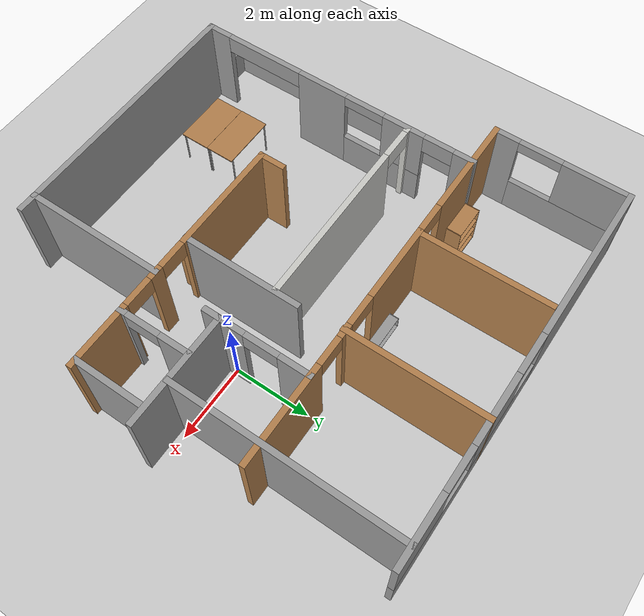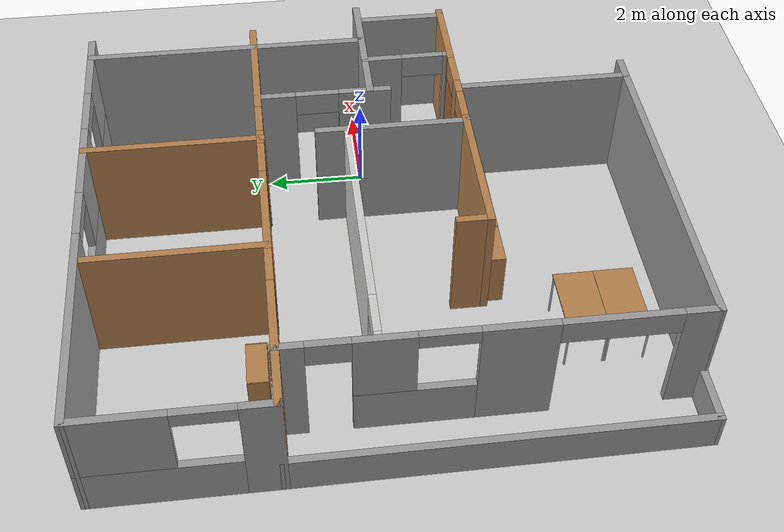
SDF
<sdf version="1.7">
 <world name="default">
  <model name="ground_plane">
   <static>1</static>
   <link name="link">
    <collision name="collision">
     <geometry><plane><normal>0 0 1</normal><size>100 100</size></plane></geometry>
     <surface><friction><ode><mu>100</mu><mu2>50</mu2></ode></friction></surface>
    </collision>
    <visual name="visual">
     <cast_shadows>0</cast_shadows>
     <geometry><plane><normal>0 0 1</normal><size>100 100</size></plane></geometry>
     <material>
      <script><uri>file://media/materials/scripts/gazebo.material</uri><name>Gazebo/Grey</name></script>
     </material>
    </visual>
   </link>
  </model>
  <model name="psr_apartment">
   <pose>-2.46745 -0.010353 0 0 -0 0</pose>
   <link name="Wall_11">
    <pose>-0.304378 5.68028 0 0 -0 0</pose>
    <visual name="Wall_11_Visual_0">
     <pose>-2.95563 0 1.25 0 -0 0</pose>
     <geometry><box><size>4.33874 0.15 2.5</size></box></geometry>
     <material>
      <script><uri>file://media/materials/scripts/gazebo.material</uri><name>Gazebo/Grey</name></script>
      <ambient>1 1 1 1</ambient>
     </material>
     <meta><layer>0</layer></meta>
    </visual>
    <collision name="Wall_11_Collision_0">
     <geometry><box><size>4.33874 0.15 2.5</size></box></geometry>
     <pose>-2.95563 0 1.25 0 -0 0</pose>
    </collision>
    <visual name="Wall_11_Visual_1">
     <pose>2.16937 0 0.5 0 -0 0</pose>
     <geometry><box><size>5.91126 0.15 1</size></box></geometry>
     <material>
      <script><uri>file://media/materials/scripts/gazebo.material</uri><name>Gazebo/Grey</name></script>
      <ambient>1 1 1 1</ambient>
     </material>
     <meta><layer>0</layer></meta>
    </visual>
    <collision name="Wall_11_Collision_1">
     <geometry><box><size>5.91126 0.15 1</size></box></geometry>
     <pose>2.16937 0 0.5 0 -0 0</pose>
    </collision>
    <visual name="Wall_11_Visual_2">
     <pose>1.24874 0 1.75 0 -0 0</pose>
     <geometry><box><size>1.87 0.15 1.5</size></box></geometry>
     <material>
      <script><uri>file://media/materials/scripts/gazebo.material</uri><name>Gazebo/Grey</name></script>
      <ambient>1 1 1 1</ambient>
     </material>
     <meta><layer>0</layer></meta>
    </visual>
    <collision name="Wall_11_Collision_2">
     <geometry><box><size>1.87 0.15 1.5</size></box></geometry>
     <pose>1.24874 0 1.75 0 -0 0</pose>
    </collision>
    <visual name="Wall_11_Visual_3">
     <pose>4.21937 0 1.75 0 -0 0</pose>
     <geometry><box><size>1.81126 0.15 1.5</size></box></geometry>
     <material>
      <script><uri>file://media/materials/scripts/gazebo.material</uri><name>Gazebo/Grey</name></script>
      <ambient>1 1 1 1</ambient>
     </material>
     <meta><layer>0</layer></meta>
    </visual>
    <collision name="Wall_11_Collision_3">
     <geometry><box><size>1.81126 0.15 1.5</size></box></geometry>
     <pose>4.21937 0 1.75 0 -0 0</pose>
    </collision>
    <visual name="Wall_11_Visual_4">
     <pose>-0.236258 0 2.35 0 -0 0</pose>
     <geometry><box><size>1.1 0.15 0.3</size></box></geometry>
     <material>
      <script><uri>file://media/materials/scripts/gazebo.material</uri><name>Gazebo/Grey</name></script>
      <ambient>1 1 1 1</ambient>
     </material>
     <meta><layer>0</layer></meta>
    </visual>
    <collision name="Wall_11_Collision_4">
     <geometry><box><size>1.1 0.15 0.3</size></box></geometry>
     <pose>-0.236258 0 2.35 0 -0 0</pose>
    </collision>
    <visual name="Wall_11_Visual_5">
     <pose>2.74874 0 2.35 0 -0 0</pose>
     <geometry><box><size>1.13 0.15 0.3</size></box></geometry>
     <material>
      <script><uri>file://media/materials/scripts/gazebo.material</uri><name>Gazebo/Grey</name></script>
      <ambient>1 1 1 1</ambient>
     </material>
     <meta><layer>0</layer></meta>
    </visual>
    <collision name="Wall_11_Collision_5">
     <geometry><box><size>1.13 0.15 0.3</size></box></geometry>
     <pose>2.74874 0 2.35 0 -0 0</pose>
    </collision>
   </link>
   <link name="Wall_13">
    <pose>-5.34997 3.91932 0 0 -0 1.5733</pose>
    <visual name="Wall_13_Visual_0">
     <pose>-1.47102 0 1.25 0 -0 0</pose>
     <geometry><box><size>0.73014 0.15 2.5</size></box></geometry>
     <material>
      <script><uri>file://media/materials/scripts/gazebo.material</uri><name>Gazebo/Grey</name></script>
      <ambient>1 1 1 1</ambient>
     </material>
     <meta><layer>0</layer></meta>
    </visual>
    <collision name="Wall_13_Collision_0">
     <geometry><box><size>0.73014 0.15 2.5</size></box></geometry>
     <pose>-1.47102 0 1.25 0 -0 0</pose>
    </collision>
    <visual name="Wall_13_Visual_1">
     <pose>0.36507 0 0.5 0 -0 0</pose>
     <geometry><box><size>2.94204 0.15 1</size></box></geometry>
     <material>
      <script><uri>file://media/materials/scripts/gazebo.material</uri><name>Gazebo/Grey</name></script>
      <ambient>1 1 1 1</ambient>
     </material>
     <meta><layer>0</layer></meta>
    </visual>
    <collision name="Wall_13_Collision_1">
     <geometry><box><size>2.94204 0.15 1</size></box></geometry>
     <pose>0.36507 0 0.5 0 -0 0</pose>
    </collision>
    <visual name="Wall_13_Visual_2">
     <pose>0.93507 0 1.75 0 -0 0</pose>
     <geometry><box><size>1.80204 0.15 1.5</size></box></geometry>
     <material>
      <script><uri>file://media/materials/scripts/gazebo.material</uri><name>Gazebo/Grey</name></script>
      <ambient>1 1 1 1</ambient>
     </material>
     <meta><layer>0</layer></meta>
    </visual>
    <collision name="Wall_13_Collision_2">
     <geometry><box><size>1.80204 0.15 1.5</size></box></geometry>
     <pose>0.93507 0 1.75 0 -0 0</pose>
    </collision>
    <visual name="Wall_13_Visual_3">
     <pose>-0.535949 0 2.35 0 -0 0</pose>
     <geometry><box><size>1.14 0.15 0.3</size></box></geometry>
     <material>
      <script><uri>file://media/materials/scripts/gazebo.material</uri><name>Gazebo/Grey</name></script>
      <ambient>1 1 1 1</ambient>
     </material>
     <meta><layer>0</layer></meta>
    </visual>
    <collision name="Wall_13_Collision_3">
     <geometry><box><size>1.14 0.15 0.3</size></box></geometry>
     <pose>-0.535949 0 2.35 0 -0 0</pose>
    </collision>
   </link>
   <link name="Wall_15">
    <collision name="Wall_15_Collision">
     <geometry><box><size>3.49149 0.15 2.5</size></box></geometry>
     <pose>0 0 1.25 0 -0 0</pose>
    </collision>
    <visual name="Wall_15_Visual">
     <pose>0 0 1.25 0 -0 0</pose>
     <geometry><box><size>3.49149 0.15 2.5</size></box></geometry>
     <material>
      <script><uri>file://media/materials/scripts/gazebo.material</uri><name>Gazebo/Wood</name></script>
      <ambient>1 1 1 1</ambient>
     </material>
     <meta><layer>0</layer></meta>
    </visual>
    <pose>-1.77272 3.85299 0 0 -0 1.57535</pose>
   </link>
   <link name="Wall_17">
    <collision name="Wall_17_Collision">
     <geometry><box><size>3.69364 0.15 2.5</size></box></geometry>
     <pose>0 0 1.25 0 -0 0</pose>
    </collision>
    <visual name="Wall_17_Visual">
     <pose>0 0 1.25 0 -0 0</pose>
     <geometry><box><size>3.69364 0.15 2.5</size></box></geometry>
     <material>
      <script><uri>file://media/materials/scripts/gazebo.material</uri><name>Gazebo/Wood</name></script>
      <ambient>1 1 1 1</ambient>
     </material>
     <meta><layer>0</layer></meta>
    </visual>
    <pose>1.2158 3.90846 0 0 -0 1.5708</pose>
   </link>
   <link name="Wall_19">
    <pose>2.49334 0.790666 0 0 -0 -1.5708</pose>
    <visual name="Wall_19_Visual_0">
     <pose>-1.00243 0 1.25 0 -0 0</pose>
     <geometry><box><size>0.867502 0.15 2.5</size></box></geometry>
     <material>
      <script><uri>file://media/materials/scripts/gazebo.material</uri><name>Gazebo/Grey</name></script>
      <ambient>1 1 1 1</ambient>
     </material>
     <meta><layer>0</layer></meta>
    </visual>
    <collision name="Wall_19_Collision_0">
     <geometry><box><size>0.867502 0.15 2.5</size></box></geometry>
     <pose>-1.00243 0 1.25 0 -0 0</pose>
    </collision>
    <visual name="Wall_19_Visual_1">
     <pose>0.883751 0 1.25 0 -0 0</pose>
     <geometry><box><size>1.10486 0.15 2.5</size></box></geometry>
     <material>
      <script><uri>file://media/materials/scripts/gazebo.material</uri><name>Gazebo/Grey</name></script>
      <ambient>1 1 1 1</ambient>
     </material>
     <meta><layer>0</layer></meta>
    </visual>
    <collision name="Wall_19_Collision_1">
     <geometry><box><size>1.10486 0.15 2.5</size></box></geometry>
     <pose>0.883751 0 1.25 0 -0 0</pose>
    </collision>
    <visual name="Wall_19_Visual_2">
     <pose>-0.118681 0 2.25 0 -0 0</pose>
     <geometry><box><size>0.9 0.15 0.5</size></box></geometry>
     <material>
      <script><uri>file://media/materials/scripts/gazebo.material</uri><name>Gazebo/Grey</name></script>
      <ambient>1 1 1 1</ambient>
     </material>
     <meta><layer>0</layer></meta>
    </visual>
    <collision name="Wall_19_Collision_2">
     <geometry><box><size>0.9 0.15 0.5</size></box></geometry>
     <pose>-0.118681 0 2.25 0 -0 0</pose>
    </collision>
   </link>
   <link name="Wall_2">
    <collision name="Wall_2_Collision">
     <geometry><box><size>7.14201 0.15 2.5</size></box></geometry>
     <pose>0 0 1.25 0 -0 0</pose>
    </collision>
    <visual name="Wall_2_Visual">
     <pose>0 0 1.25 0 -0 0</pose>
     <geometry><box><size>7.14201 0.15 2.5</size></box></geometry>
     <material>
      <script><uri>file://media/materials/scripts/gazebo.material</uri><name>Gazebo/Grey</name></script>
      <ambient>1 1 1 1</ambient>
     </material>
     <meta><layer>0</layer></meta>
    </visual>
    <pose>-0.692508 -5.67455 0 0 -0 -0.00169</pose>
   </link>
   <link name="Wall_21">
    <collision name="Wall_21_Collision">
     <geometry><box><size>3 0.15 2.5</size></box></geometry>
     <pose>0 0 1.25 0 -0 0</pose>
    </collision>
    <visual name="Wall_21_Visual">
     <pose>0 0 1.25 0 -0 0</pose>
     <geometry><box><size>3 0.15 2.5</size></box></geometry>
     <material>
      <script><uri>file://media/materials/scripts/gazebo.material</uri><name>Gazebo/Grey</name></script>
      <ambient>1 1 1 1</ambient>
     </material>
     <meta><layer>0</layer></meta>
    </visual>
    <pose>3.92957 -0.207491 0 0 -0 3.14159</pose>
   </link>
   <link name="Wall_24">
    <pose>1.7781 -2.06515 0 0 -0 0</pose>
    <visual name="Wall_24_Visual_0">
     <pose>-1.84862 0 1.25 0 -0 0</pose>
     <geometry><box><size>3.05276 0.15 2.5</size></box></geometry>
     <material>
      <script><uri>file://media/materials/scripts/gazebo.material</uri><name>Gazebo/Wood</name></script>
      <ambient>1 1 1 1</ambient>
     </material>
     <meta><layer>0</layer></meta>
    </visual>
    <collision name="Wall_24_Collision_0">
     <geometry><box><size>3.05276 0.15 2.5</size></box></geometry>
     <pose>-1.84862 0 1.25 0 -0 0</pose>
    </collision>
    <visual name="Wall_24_Visual_1">
     <pose>0.622094 0 1.25 0 -0 0</pose>
     <geometry><box><size>0.377977 0.15 2.5</size></box></geometry>
     <material>
      <script><uri>file://media/materials/scripts/gazebo.material</uri><name>Gazebo/Wood</name></script>
      <ambient>1 1 1 1</ambient>
     </material>
     <meta><layer>0</layer></meta>
    </visual>
    <collision name="Wall_24_Collision_1">
     <geometry><box><size>0.377977 0.15 2.5</size></box></geometry>
     <pose>0.622094 0 1.25 0 -0 0</pose>
    </collision>
    <visual name="Wall_24_Visual_2">
     <pose>2.48387 0 1.25 0 -0 0</pose>
     <geometry><box><size>1.78227 0.15 2.5</size></box></geometry>
     <material>
      <script><uri>file://media/materials/scripts/gazebo.material</uri><name>Gazebo/Wood</name></script>
      <ambient>1 1 1 1</ambient>
     </material>
     <meta><layer>0</layer></meta>
    </visual>
    <collision name="Wall_24_Collision_2">
     <geometry><box><size>1.78227 0.15 2.5</size></box></geometry>
     <pose>2.48387 0 1.25 0 -0 0</pose>
    </collision>
    <visual name="Wall_24_Visual_3">
     <pose>0.055432 0 2.25 0 -0 0</pose>
     <geometry><box><size>0.755346 0.15 0.5</size></box></geometry>
     <material>
      <script><uri>file://media/materials/scripts/gazebo.material</uri><name>Gazebo/Wood</name></script>
      <ambient>1 1 1 1</ambient>
     </material>
     <meta><layer>0</layer></meta>
    </visual>
    <collision name="Wall_24_Collision_3">
     <geometry><box><size>0.755346 0.15 0.5</size></box></geometry>
     <pose>0.055432 0 2.25 0 -0 0</pose>
    </collision>
    <visual name="Wall_24_Visual_4">
     <pose>1.20191 0 2.25 0 -0 0</pose>
     <geometry><box><size>0.781647 0.15 0.5</size></box></geometry>
     <material>
      <script><uri>file://media/materials/scripts/gazebo.material</uri><name>Gazebo/Wood</name></script>
      <ambient>1 1 1 1</ambient>
     </material>
     <meta><layer>0</layer></meta>
    </visual>
    <collision name="Wall_24_Collision_4">
     <geometry><box><size>0.781647 0.15 0.5</size></box></geometry>
     <pose>1.20191 0 2.25 0 -0 0</pose>
    </collision>
   </link>
   <link name="Wall_27">
    <collision name="Wall_27_Collision">
     <geometry><box><size>2 0.15 2.5</size></box></geometry>
     <pose>0 0 1.25 0 -0 0</pose>
    </collision>
    <visual name="Wall_27_Visual">
     <pose>0 0 1.25 0 -0 0</pose>
     <geometry><box><size>2 0.15 2.5</size></box></geometry>
     <material>
      <script><uri>file://media/materials/scripts/gazebo.material</uri><name>Gazebo/Grey</name></script>
      <ambient>1 1 1 1</ambient>
     </material>
     <meta><layer>0</layer></meta>
    </visual>
    <pose>4.94512 -1.14015 0 0 -0 1.5708</pose>
   </link>
   <link name="Wall_29">
    <pose>3.52344 -1.14601 0 0 -0 -1.5636</pose>
    <visual name="Wall_29_Visual_0">
     <pose>-0.566193 0 1.25 0 -0 0</pose>
     <geometry><box><size>0.855937 0.15 2.5</size></box></geometry>
     <material>
      <script><uri>file://media/materials/scripts/gazebo.material</uri><name>Gazebo/Grey</name></script>
      <ambient>1 1 1 1</ambient>
     </material>
     <meta><layer>0</layer></meta>
    </visual>
    <collision name="Wall_29_Collision_0">
     <geometry><box><size>0.855937 0.15 2.5</size></box></geometry>
     <pose>-0.566193 0 1.25 0 -0 0</pose>
    </collision>
    <visual name="Wall_29_Visual_1">
     <pose>0.877969 0 1.25 0 -0 0</pose>
     <geometry><box><size>0.232385 0.15 2.5</size></box></geometry>
     <material>
      <script><uri>file://media/materials/scripts/gazebo.material</uri><name>Gazebo/Grey</name></script>
      <ambient>1 1 1 1</ambient>
     </material>
     <meta><layer>0</layer></meta>
    </visual>
    <collision name="Wall_29_Collision_1">
     <geometry><box><size>0.232385 0.15 2.5</size></box></geometry>
     <pose>0.877969 0 1.25 0 -0 0</pose>
    </collision>
    <visual name="Wall_29_Visual_2">
     <pose>0.311776 0 2.25 0 -0 0</pose>
     <geometry><box><size>0.9 0.15 0.5</size></box></geometry>
     <material>
      <script><uri>file://media/materials/scripts/gazebo.material</uri><name>Gazebo/Grey</name></script>
      <ambient>1 1 1 1</ambient>
     </material>
     <meta><layer>0</layer></meta>
    </visual>
    <collision name="Wall_29_Collision_2">
     <geometry><box><size>0.9 0.15 0.5</size></box></geometry>
     <pose>0.311776 0 2.25 0 -0 0</pose>
    </collision>
   </link>
   <link name="Wall_31">
    <collision name="Wall_31_Collision">
     <geometry><box><size>3.19175 0.15 2.5</size></box></geometry>
     <pose>0 0 1.25 0 -0 0</pose>
    </collision>
    <visual name="Wall_31_Visual">
     <pose>0 0 1.25 0 -0 0</pose>
     <geometry><box><size>3.19175 0.15 2.5</size></box></geometry>
     <material>
      <script><uri>file://media/materials/scripts/gazebo.material</uri><name>Gazebo/Grey</name></script>
      <ambient>1 1 1 1</ambient>
     </material>
     <meta><layer>0</layer></meta>
    </visual>
    <pose>1.30267 -0.550631 0 0 -0 1.5708</pose>
   </link>
   <link name="Wall_34">
    <pose>-1.44379 0.379575 0 0 -0 0</pose>
    <visual name="Wall_34_Visual_0">
     <pose>-2.70164 0 1.25 0 -0 0</pose>
     <geometry><box><size>0.216714 0.15 2.5</size></box></geometry>
     <material>
      <script><uri>file://media/materials/scripts/gazebo.material</uri><name>Gazebo/CeilingTiled</name></script>
      <ambient>1 1 1 1</ambient>
     </material>
     <meta><layer>0</layer></meta>
    </visual>
    <collision name="Wall_34_Collision_0">
     <geometry><box><size>0.216714 0.15 2.5</size></box></geometry>
     <pose>-2.70164 0 1.25 0 -0 0</pose>
    </collision>
    <visual name="Wall_34_Visual_1">
     <pose>0.528187 0 1.25 0 -0 0</pose>
     <geometry><box><size>4.56363 0.15 2.5</size></box></geometry>
     <material>
      <script><uri>file://media/materials/scripts/gazebo.material</uri><name>Gazebo/CeilingTiled</name></script>
      <ambient>1 1 1 1</ambient>
     </material>
     <meta><layer>0</layer></meta>
    </visual>
    <collision name="Wall_34_Collision_1">
     <geometry><box><size>4.56363 0.15 2.5</size></box></geometry>
     <pose>0.528187 0 1.25 0 -0 0</pose>
    </collision>
    <visual name="Wall_34_Visual_2">
     <pose>-2.17346 0 2.25 0 -0 0</pose>
     <geometry><box><size>0.839659 0.15 0.5</size></box></geometry>
     <material>
      <script><uri>file://media/materials/scripts/gazebo.material</uri><name>Gazebo/CeilingTiled</name></script>
      <ambient>1 1 1 1</ambient>
     </material>
     <meta><layer>0</layer></meta>
    </visual>
    <collision name="Wall_34_Collision_2">
     <geometry><box><size>0.839659 0.15 0.5</size></box></geometry>
     <pose>-2.17346 0 2.25 0 -0 0</pose>
    </collision>
   </link>
   <link name="Wall_36">
    <collision name="Wall_36_Collision">
     <geometry><box><size>0.75 0.15 2.5</size></box></geometry>
     <pose>0 0 1.25 0 -0 0</pose>
    </collision>
    <visual name="Wall_36_Visual">
     <pose>0 0 1.25 0 -0 0</pose>
     <geometry><box><size>0.75 0.15 2.5</size></box></geometry>
     <material>
      <script><uri>file://media/materials/scripts/gazebo.material</uri><name>Gazebo/Wood</name></script>
      <ambient>1 1 1 1</ambient>
     </material>
     <meta><layer>0</layer></meta>
    </visual>
    <pose>-1.5219 -1.76515 0 0 -0 1.5708</pose>
   </link>
   <link name="Wall_39">
    <collision name="Wall_39_Collision">
     <geometry><box><size>3.75 0.15 2.5</size></box></geometry>
     <pose>0 0 1.25 0 -0 0</pose>
    </collision>
    <visual name="Wall_39_Visual">
     <pose>0 0 1.25 0 -0 0</pose>
     <geometry><box><size>3.75 0.15 2.5</size></box></geometry>
     <material>
      <script><uri>file://media/materials/scripts/gazebo.material</uri><name>Gazebo/Grey</name></script>
      <ambient>1 1 1 1</ambient>
     </material>
     <meta><layer>0</layer></meta>
    </visual>
    <pose>2.37648 -3.8696 0 0 -0 -1.5708</pose>
   </link>
   <link name="Wall_4">
    <pose>-4.18851 -1.7438 0 0 -0 1.57079</pose>
    <visual name="Wall_4_Visual_0">
     <pose>-3.64118 0 1.25 0 -0 0</pose>
     <geometry><box><size>0.717646 0.15 2.5</size></box></geometry>
     <material>
      <script><uri>file://media/materials/scripts/gazebo.material</uri><name>Gazebo/Grey</name></script>
      <ambient>1 1 1 1</ambient>
     </material>
     <meta><layer>0</layer></meta>
    </visual>
    <collision name="Wall_4_Collision_0">
     <geometry><box><size>0.717646 0.15 2.5</size></box></geometry>
     <pose>-3.64118 0 1.25 0 -0 0</pose>
    </collision>
    <visual name="Wall_4_Visual_1">
     <pose>-0.38098 0 1.25 0 -0 0</pose>
     <geometry><box><size>1.41075 0.15 2.5</size></box></geometry>
     <material>
      <script><uri>file://media/materials/scripts/gazebo.material</uri><name>Gazebo/Grey</name></script>
      <ambient>1 1 1 1</ambient>
     </material>
     <meta><layer>0</layer></meta>
    </visual>
    <collision name="Wall_4_Collision_1">
     <geometry><box><size>1.41075 0.15 2.5</size></box></geometry>
     <pose>-0.38098 0 1.25 0 -0 0</pose>
    </collision>
    <visual name="Wall_4_Visual_2">
     <pose>3.70228 0 1.25 0 -0 0</pose>
     <geometry><box><size>0.59543 0.15 2.5</size></box></geometry>
     <material>
      <script><uri>file://media/materials/scripts/gazebo.material</uri><name>Gazebo/Grey</name></script>
      <ambient>1 1 1 1</ambient>
     </material>
     <meta><layer>0</layer></meta>
    </visual>
    <collision name="Wall_4_Collision_2">
     <geometry><box><size>0.59543 0.15 2.5</size></box></geometry>
     <pose>3.70228 0 1.25 0 -0 0</pose>
    </collision>
    <visual name="Wall_4_Visual_3">
     <pose>1.45361 0 0.5 0 -0 0</pose>
     <geometry><box><size>2.25844 0.15 1</size></box></geometry>
     <material>
      <script><uri>file://media/materials/scripts/gazebo.material</uri><name>Gazebo/Grey</name></script>
      <ambient>1 1 1 1</ambient>
     </material>
     <meta><layer>0</layer></meta>
    </visual>
    <collision name="Wall_4_Collision_3">
     <geometry><box><size>2.25844 0.15 1</size></box></geometry>
     <pose>1.45361 0 0.5 0 -0 0</pose>
    </collision>
    <visual name="Wall_4_Visual_4">
     <pose>2.00561 0 1.75 0 -0 0</pose>
     <geometry><box><size>1.15444 0.15 1.5</size></box></geometry>
     <material>
      <script><uri>file://media/materials/scripts/gazebo.material</uri><name>Gazebo/Grey</name></script>
      <ambient>1 1 1 1</ambient>
     </material>
     <meta><layer>0</layer></meta>
    </visual>
    <collision name="Wall_4_Collision_4">
     <geometry><box><size>1.15444 0.15 1.5</size></box></geometry>
     <pose>2.00561 0 1.75 0 -0 0</pose>
    </collision>
    <visual name="Wall_4_Visual_5">
     <pose>-2.18435 0 2.25 0 -0 0</pose>
     <geometry><box><size>2.196 0.15 0.5</size></box></geometry>
     <material>
      <script><uri>file://media/materials/scripts/gazebo.material</uri><name>Gazebo/Grey</name></script>
      <ambient>1 1 1 1</ambient>
     </material>
     <meta><layer>0</layer></meta>
    </visual>
    <collision name="Wall_4_Collision_5">
     <geometry><box><size>2.196 0.15 0.5</size></box></geometry>
     <pose>-2.18435 0 2.25 0 -0 0</pose>
    </collision>
    <visual name="Wall_4_Visual_6">
     <pose>2.9937 0 2.25 0 -0 0</pose>
     <geometry><box><size>0.821739 0.15 0.5</size></box></geometry>
     <material>
      <script><uri>file://media/materials/scripts/gazebo.material</uri><name>Gazebo/Grey</name></script>
      <ambient>1 1 1 1</ambient>
     </material>
     <meta><layer>0</layer></meta>
    </visual>
    <collision name="Wall_4_Collision_6">
     <geometry><box><size>0.821739 0.15 0.5</size></box></geometry>
     <pose>2.9937 0 2.25 0 -0 0</pose>
    </collision>
    <visual name="Wall_4_Visual_7">
     <pose>0.876393 0 2.35 0 -0 0</pose>
     <geometry><box><size>1.104 0.15 0.3</size></box></geometry>
     <material>
      <script><uri>file://media/materials/scripts/gazebo.material</uri><name>Gazebo/Grey</name></script>
      <ambient>1 1 1 1</ambient>
     </material>
     <meta><layer>0</layer></meta>
    </visual>
    <collision name="Wall_4_Collision_7">
     <geometry><box><size>1.104 0.15 0.3</size></box></geometry>
     <pose>0.876393 0 2.35 0 -0 0</pose>
    </collision>
   </link>
   <link name="Wall_41">
    <collision name="Wall_41_Collision">
     <geometry><box><size>1.25 0.15 0.8</size></box></geometry>
     <pose>0 0 0.4 0 -0 0</pose>
    </collision>
    <visual name="Wall_41_Visual">
     <pose>0 0 0.4 0 -0 0</pose>
     <geometry><box><size>1.25 0.15 0.8</size></box></geometry>
     <material>
      <script><uri>file://media/materials/scripts/gazebo.material</uri><name>Gazebo/Grey</name></script>
      <ambient>0.368627 0.384314 0.352941 1</ambient>
     </material>
     <meta><layer>0</layer></meta>
    </visual>
    <pose>-4.73855 -5.66865 0 0 -0 3.14159</pose>
   </link>
   <link name="Wall_42">
    <collision name="Wall_42_Collision">
     <geometry><box><size>7.97728 0.15 0.8</size></box></geometry>
     <pose>0 0 0.4 0 -0 0</pose>
    </collision>
    <visual name="Wall_42_Visual">
     <pose>0 0 0.4 0 -0 0</pose>
     <geometry><box><size>7.97728 0.15 0.8</size></box></geometry>
     <material>
      <script><uri>file://media/materials/scripts/gazebo.material</uri><name>Gazebo/Grey</name></script>
      <ambient>0.368627 0.384314 0.352941 1</ambient>
     </material>
     <meta><layer>0</layer></meta>
    </visual>
    <pose>-5.31705 -1.75515 0 0 -0 1.57808</pose>
   </link>
   <link name="Wall_6">
    <pose>-0.295353 2.15823 0 0 -0 -2.4e-05</pose>
    <visual name="Wall_6_Visual_0">
     <pose>-3.73944 0 1.25 0 -0 0</pose>
     <geometry><box><size>2.77111 0.15 2.5</size></box></geometry>
     <material>
      <script><uri>file://media/materials/scripts/gazebo.material</uri><name>Gazebo/Wood</name></script>
      <ambient>1 1 1 1</ambient>
     </material>
     <meta><layer>0</layer></meta>
    </visual>
    <collision name="Wall_6_Collision_0">
     <geometry><box><size>2.77111 0.15 2.5</size></box></geometry>
     <pose>-3.73944 0 1.25 0 -0 0</pose>
    </collision>
    <visual name="Wall_6_Visual_1">
     <pose>-0.52611 0 1.25 0 -0 0</pose>
     <geometry><box><size>2.09692 0.15 2.5</size></box></geometry>
     <material>
      <script><uri>file://media/materials/scripts/gazebo.material</uri><name>Gazebo/Wood</name></script>
      <ambient>1 1 1 1</ambient>
     </material>
     <meta><layer>0</layer></meta>
    </visual>
    <collision name="Wall_6_Collision_1">
     <geometry><box><size>2.09692 0.15 2.5</size></box></geometry>
     <pose>-0.52611 0 1.25 0 -0 0</pose>
    </collision>
    <visual name="Wall_6_Visual_2">
     <pose>1.53051 0 1.25 0 -0 0</pose>
     <geometry><box><size>0.377215 0.15 2.5</size></box></geometry>
     <material>
      <script><uri>file://media/materials/scripts/gazebo.material</uri><name>Gazebo/Wood</name></script>
      <ambient>1 1 1 1</ambient>
     </material>
     <meta><layer>0</layer></meta>
    </visual>
    <collision name="Wall_6_Collision_2">
     <geometry><box><size>0.377215 0.15 2.5</size></box></geometry>
     <pose>1.53051 0 1.25 0 -0 0</pose>
    </collision>
    <visual name="Wall_6_Visual_3">
     <pose>3.80166 0 1.25 0 -0 0</pose>
     <geometry><box><size>2.64668 0.15 2.5</size></box></geometry>
     <material>
      <script><uri>file://media/materials/scripts/gazebo.material</uri><name>Gazebo/Wood</name></script>
      <ambient>1 1 1 1</ambient>
     </material>
     <meta><layer>0</layer></meta>
    </visual>
    <collision name="Wall_6_Collision_3">
     <geometry><box><size>2.64668 0.15 2.5</size></box></geometry>
     <pose>3.80166 0 1.25 0 -0 0</pose>
    </collision>
    <visual name="Wall_6_Visual_4">
     <pose>-1.96423 0 2.25 0 -0 0</pose>
     <geometry><box><size>0.779319 0.15 0.5</size></box></geometry>
     <material>
      <script><uri>file://media/materials/scripts/gazebo.material</uri><name>Gazebo/Wood</name></script>
      <ambient>1 1 1 1</ambient>
     </material>
     <meta><layer>0</layer></meta>
    </visual>
    <collision name="Wall_6_Collision_4">
     <geometry><box><size>0.779319 0.15 0.5</size></box></geometry>
     <pose>-1.96423 0 2.25 0 -0 0</pose>
    </collision>
    <visual name="Wall_6_Visual_5">
     <pose>0.932124 0 2.25 0 -0 0</pose>
     <geometry><box><size>0.819546 0.15 0.5</size></box></geometry>
     <material>
      <script><uri>file://media/materials/scripts/gazebo.material</uri><name>Gazebo/Wood</name></script>
      <ambient>1 1 1 1</ambient>
     </material>
     <meta><layer>0</layer></meta>
    </visual>
    <collision name="Wall_6_Collision_5">
     <geometry><box><size>0.819546 0.15 0.5</size></box></geometry>
     <pose>0.932124 0 2.25 0 -0 0</pose>
    </collision>
    <visual name="Wall_6_Visual_6">
     <pose>2.09872 0 2.25 0 -0 0</pose>
     <geometry><box><size>0.759206 0.15 0.5</size></box></geometry>
     <material>
      <script><uri>file://media/materials/scripts/gazebo.material</uri><name>Gazebo/Wood</name></script>
      <ambient>1 1 1 1</ambient>
     </material>
     <meta><layer>0</layer></meta>
    </visual>
    <collision name="Wall_6_Collision_6">
     <geometry><box><size>0.759206 0.15 0.5</size></box></geometry>
     <pose>2.09872 0 2.25 0 -0 0</pose>
    </collision>
   </link>
   <link name="Wall_9">
    <collision name="Wall_9_Collision">
     <geometry><box><size>6 0.15 2.5</size></box></geometry>
     <pose>0 0 1.25 0 -0 0</pose>
    </collision>
    <visual name="Wall_9_Visual">
     <pose>0 0 1.25 0 -0 0</pose>
     <geometry><box><size>6 0.15 2.5</size></box></geometry>
     <material>
      <script><uri>file://media/materials/scripts/gazebo.material</uri><name>Gazebo/Grey</name></script>
      <ambient>1 1 1 1</ambient>
     </material>
     <meta><layer>0</layer></meta>
    </visual>
    <pose>4.22713 2.74007 0 0 -0 -1.5708</pose>
   </link>
   <static>1</static>
  </model>
  <model name="Wall_Cabinet_36x15W">
   <link name="Wall_0">
    <pose>0 0 0.01 0 -0 0</pose>
    <inertial>
     <mass>1.9796</mass>
     <inertia><ixx>0.0145</ixx><iyy>0.1511</iyy><izz>0.1367</izz><ixy>0</ixy><ixz>0</ixz><iyz>0</iyz></inertia>
    </inertial>
    <collision name="Wall_0_Collision"><geometry><box><size>0.91 0.296 0.02</size></box></geometry></collision>
    <visual name="Wall_0_Visual">
     <geometry><box><size>0.91 0.296 0.02</size></box></geometry>
     <material>
      <script><uri>file://media/materials/scripts/gazebo.material</uri><name>Gazebo/Grey</name></script>
      <ambient>1 1 1 1</ambient>
     </material>
    </visual>
   </link>
   <joint name="0_2" type="fixed">
    <pose>-0.455 0 0 0 -0 0</pose>
    <parent>Wall_2</parent>
    <child>Wall_0</child>
    <axis><xyz>0 0 1</xyz><limit><lower>-1e+16</lower><upper>1e+16</upper></limit></axis>
   </joint>
   <joint name="0_4" type="fixed">
    <pose>0.455 0 0 0 -0 0</pose>
    <parent>Wall_4</parent>
    <child>Wall_0</child>
    <axis><xyz>0 0 1</xyz><limit><lower>-1e+16</lower><upper>1e+16</upper></limit></axis>
   </joint>
   <joint name="0_8" type="fixed">
    <pose>0 -0.148 0 0 -0 0</pose>
    <parent>Wall_8</parent>
    <child>Wall_0</child>
    <axis><xyz>0 0 1</xyz><limit><lower>-1e+16</lower><upper>1e+16</upper></limit></axis>
   </joint>
   <link name="Wall_2">
    <pose>-0.445 0 0.192 0 -0 0</pose>
    <inertial>
     <mass>0.8353</mass>
     <inertia><ixx>0.0061</ixx><iyy>0.0164</iyy><izz>0.0103</izz><ixy>0</ixy><ixz>0</ixz><iyz>0</iyz></inertia>
    </inertial>
    <collision name="Wall_2_Collision"><geometry><box><size>0.02 0.296 0.384</size></box></geometry></collision>
    <visual name="Wall_2_Visual">
     <geometry><box><size>0.02 0.296 0.384</size></box></geometry>
     <material>
      <script><uri>file://media/materials/scripts/gazebo.material</uri><name>Gazebo/Grey</name></script>
      <ambient>1 1 1 1</ambient>
     </material>
    </visual>
   </link>
   <link name="Wall_4">
    <pose>0.445 0 0.192 0 -0 0</pose>
    <inertial>
     <mass>0.8353</mass>
     <inertia><ixx>0.0061</ixx><iyy>0.0164</iyy><izz>0.0103</izz><ixy>0</ixy><ixz>0</ixz><iyz>0</iyz></inertia>
    </inertial>
    <collision name="Wall_4_Collision"><geometry><box><size>0.02 0.296 0.384</size></box></geometry></collision>
    <visual name="Wall_4_Visual">
     <geometry><box><size>0.02 0.296 0.384</size></box></geometry>
     <material>
      <script><uri>file://media/materials/scripts/gazebo.material</uri><name>Gazebo/Grey</name></script>
      <ambient>1 1 1 1</ambient>
     </material>
    </visual>
   </link>
   <link name="Wall_6">
    <pose>0 0 0.374 0 -0 0</pose>
    <inertial>
     <mass>1.9796</mass>
     <inertia><ixx>0.0145</ixx><iyy>0.1511</iyy><izz>0.1367</izz><ixy>0</ixy><ixz>0</ixz><iyz>0</iyz></inertia>
    </inertial>
    <collision name="Wall_6_Collision"><geometry><box><size>0.91 0.296 0.02</size></box></geometry></collision>
    <visual name="Wall_6_Visual">
     <geometry><box><size>0.91 0.296 0.02</size></box></geometry>
     <material>
      <script><uri>file://media/materials/scripts/gazebo.material</uri><name>Gazebo/Grey</name></script>
      <ambient>1 1 1 1</ambient>
     </material>
    </visual>
   </link>
   <joint name="6_2" type="fixed">
    <pose>-0.455 0 0 0 -0 0</pose>
    <parent>Wall_2</parent>
    <child>Wall_6</child>
    <axis><xyz>0 0 1</xyz><limit><lower>-1e+16</lower><upper>1e+16</upper></limit></axis>
   </joint>
   <joint name="6_4" type="fixed">
    <pose>0.455 0 0 0 -0 0</pose>
    <parent>Wall_4</parent>
    <child>Wall_6</child>
    <axis><xyz>0 0 1</xyz><limit><lower>-1e+16</lower><upper>1e+16</upper></limit></axis>
   </joint>
   <joint name="6_8" type="fixed">
    <pose>0 -0.148 0 0 -0 0</pose>
    <parent>Wall_8</parent>
    <child>Wall_6</child>
    <axis><xyz>0 0 1</xyz><limit><lower>-1e+16</lower><upper>1e+16</upper></limit></axis>
   </joint>
   <link name="Wall_8">
    <pose>0 -0.138 0.19 0 -0 0</pose>
    <inertial>
     <mass>2.5302</mass>
     <inertia><ixx>0.0305</ixx><iyy>0.1732</iyy><izz>0.2035</izz><ixy>0</ixy><ixz>0</ixz><iyz>0</iyz></inertia>
    </inertial>
    <collision name="Wall_8_Collision"><geometry><box><size>0.906 0.02 0.38</size></box></geometry></collision>
    <visual name="Wall_8_Visual">
     <geometry><box><size>0.906 0.02 0.38</size></box></geometry>
     <material>
      <script><uri>file://media/materials/scripts/gazebo.material</uri><name>Gazebo/Grey</name></script>
      <ambient>1 1 1 1</ambient>
     </material>
    </visual>
   </link>
   <joint name="8_2" type="fixed">
    <pose>-0.453 0 0 0 -0 0</pose>
    <parent>Wall_2</parent>
    <child>Wall_8</child>
    <axis><xyz>0 1 0</xyz><limit><lower>-1e+16</lower><upper>1e+16</upper></limit></axis>
   </joint>
   <joint name="8_4" type="fixed">
    <pose>0.453 0 0 0 -0 0</pose>
    <parent>Wall_4</parent>
    <child>Wall_8</child>
    <axis><xyz>0 1 0</xyz><limit><lower>-1e+16</lower><upper>1e+16</upper></limit></axis>
   </joint>
   <static>1</static>
   <pose>-2.68214 2.32688 0 0 -0 0</pose>
  </model>
  <model name="table">
   <static>1</static>
   <link name="link">
    <collision name="surface">
     <pose>0 0 1 0 -0 0</pose>
     <geometry><box><size>1.5 0.8 0.03</size></box></geometry>
     <surface><friction><ode><mu>0.6</mu><mu2>0.6</mu2></ode></friction></surface>
    </collision>
    <visual name="visual1">
     <pose>0 0 1 0 -0 0</pose>
     <geometry><box><size>1.5 0.8 0.03</size></box></geometry>
     <material>
      <script><uri>file://media/materials/scripts/gazebo.material</uri><name>Gazebo/Wood</name></script>
     </material>
    </visual>
    <collision name="front_left_leg">
     <pose>0.68 0.38 0.5 0 -0 0</pose>
     <geometry><cylinder><radius>0.02</radius><length>1</length></cylinder></geometry>
    </collision>
    <visual name="front_left_leg">
     <pose>0.68 0.38 0.5 0 -0 0</pose>
     <geometry><cylinder><radius>0.02</radius><length>1</length></cylinder></geometry>
     <material>
      <script><uri>file://media/materials/scripts/gazebo.material</uri><name>Gazebo/Grey</name></script>
     </material>
    </visual>
    <collision name="front_right_leg">
     <pose>0.68 -0.38 0.5 0 -0 0</pose>
     <geometry><cylinder><radius>0.02</radius><length>1</length></cylinder></geometry>
    </collision>
    <visual name="front_right_leg">
     <pose>0.68 -0.38 0.5 0 -0 0</pose>
     <geometry><cylinder><radius>0.02</radius><length>1</length></cylinder></geometry>
     <material>
      <script><uri>file://media/materials/scripts/gazebo.material</uri><name>Gazebo/Grey</name></script>
     </material>
    </visual>
    <collision name="back_right_leg">
     <pose>-0.68 -0.38 0.5 0 -0 0</pose>
     <geometry><cylinder><radius>0.02</radius><length>1</length></cylinder></geometry>
    </collision>
    <visual name="back_right_leg">
     <pose>-0.68 -0.38 0.5 0 -0 0</pose>
     <geometry><cylinder><radius>0.02</radius><length>1</length></cylinder></geometry>
     <material>
      <script><uri>file://media/materials/scripts/gazebo.material</uri><name>Gazebo/Grey</name></script>
     </material>
    </visual>
    <collision name="back_left_leg">
     <pose>-0.68 0.38 0.5 0 -0 0</pose>
     <geometry><cylinder><radius>0.02</radius><length>1</length></cylinder></geometry>
    </collision>
    <visual name="back_left_leg">
     <pose>-0.68 0.38 0.5 0 -0 0</pose>
     <geometry><cylinder><radius>0.02</radius><length>1</length></cylinder></geometry>
     <material>
      <script><uri>file://media/materials/scripts/gazebo.material</uri><name>Gazebo/Grey</name></script>
     </material>
    </visual>
   </link>
   <pose>-5.00229 -4.5499 0 0 -0 0</pose>
  </model>
  <model name="table_clone">
   <static>1</static>
   <link name="link">
    <collision name="surface">
     <pose>0 0 1 0 -0 0</pose>
     <geometry><box><size>1.5 0.8 0.03</size></box></geometry>
     <surface><friction><ode><mu>0.6</mu><mu2>0.6</mu2></ode></friction></surface>
    </collision>
    <visual name="visual1">
     <pose>0 0 1 0 -0 0</pose>
     <geometry><box><size>1.5 0.8 0.03</size></box></geometry>
     <material>
      <script><uri>file://media/materials/scripts/gazebo.material</uri><name>Gazebo/Wood</name></script>
     </material>
    </visual>
    <collision name="front_left_leg">
     <pose>0.68 0.38 0.5 0 -0 0</pose>
     <geometry><cylinder><radius>0.02</radius><length>1</length></cylinder></geometry>
    </collision>
    <visual name="front_left_leg">
     <pose>0.68 0.38 0.5 0 -0 0</pose>
     <geometry><cylinder><radius>0.02</radius><length>1</length></cylinder></geometry>
     <material>
      <script><uri>file://media/materials/scripts/gazebo.material</uri><name>Gazebo/Grey</name></script>
     </material>
    </visual>
    <collision name="front_right_leg">
     <pose>0.68 -0.38 0.5 0 -0 0</pose>
     <geometry><cylinder><radius>0.02</radius><length>1</length></cylinder></geometry>
    </collision>
    <visual name="front_right_leg">
     <pose>0.68 -0.38 0.5 0 -0 0</pose>
     <geometry><cylinder><radius>0.02</radius><length>1</length></cylinder></geometry>
     <material>
      <script><uri>file://media/materials/scripts/gazebo.material</uri><name>Gazebo/Grey</name></script>
     </material>
    </visual>
    <collision name="back_right_leg">
     <pose>-0.68 -0.38 0.5 0 -0 0</pose>
     <geometry><cylinder><radius>0.02</radius><length>1</length></cylinder></geometry>
    </collision>
    <visual name="back_right_leg">
     <pose>-0.68 -0.38 0.5 0 -0 0</pose>
     <geometry><cylinder><radius>0.02</radius><length>1</length></cylinder></geometry>
     <material>
      <script><uri>file://media/materials/scripts/gazebo.material</uri><name>Gazebo/Grey</name></script>
     </material>
    </visual>
    <collision name="back_left_leg">
     <pose>-0.68 0.38 0.5 0 -0 0</pose>
     <geometry><cylinder><radius>0.02</radius><length>1</length></cylinder></geometry>
    </collision>
    <visual name="back_left_leg">
     <pose>-0.68 0.38 0.5 0 -0 0</pose>
     <geometry><cylinder><radius>0.02</radius><length>1</length></cylinder></geometry>
     <material>
      <script><uri>file://media/materials/scripts/gazebo.material</uri><name>Gazebo/Grey</name></script>
     </material>
    </visual>
   </link>
   <pose>-5.00766 -3.74839 0 0 -0 0</pose>
  </model>
  <model name="bookshelf">
   <static>1</static>
   <link name="link">
    <inertial><mass>1</mass></inertial>
    <collision name="back">
     <pose>0 0.005 0.6 0 -0 0</pose>
     <geometry><box><size>0.9 0.01 1.2</size></box></geometry>
    </collision>
    <visual name="visual1">
     <pose>0 0.005 0.6 0 -0 0</pose>
     <geometry><box><size>0.9 0.01 1.2</size></box></geometry>
     <material>
      <script><uri>file://media/materials/scripts/gazebo.material</uri><name>Gazebo/Wood</name></script>
     </material>
    </visual>
    <collision name="left_side">
     <pose>0.45 -0.195 0.6 0 -0 0</pose>
     <geometry><box><size>0.02 0.4 1.2</size></box></geometry>
    </collision>
    <visual name="visual2">
     <pose>0.45 -0.195 0.6 0 -0 0</pose>
     <geometry><box><size>0.02 0.4 1.2</size></box></geometry>
     <material>
      <script><uri>file://media/materials/scripts/gazebo.material</uri><name>Gazebo/Wood</name></script>
     </material>
    </visual>
    <collision name="right_side">
     <pose>-0.45 -0.195 0.6 0 -0 0</pose>
     <geometry><box><size>0.02 0.4 1.2</size></box></geometry>
    </collision>
    <visual name="visual3">
     <pose>-0.45 -0.195 0.6 0 -0 0</pose>
     <geometry><box><size>0.02 0.4 1.2</size></box></geometry>
     <material>
      <script><uri>file://media/materials/scripts/gazebo.material</uri><name>Gazebo/Wood</name></script>
     </material>
    </visual>
    <collision name="bottom">
     <pose>0 -0.195 0.03 0 -0 0</pose>
     <geometry><box><size>0.88 0.4 0.06</size></box></geometry>
    </collision>
    <visual name="visual4">
     <pose>0 -0.195 0.03 0 -0 0</pose>
     <geometry><box><size>0.88 0.4 0.06</size></box></geometry>
     <material>
      <script><uri>file://media/materials/scripts/gazebo.material</uri><name>Gazebo/Wood</name></script>
     </material>
    </visual>
    <collision name="top">
     <pose>0 -0.195 1.19 0 -0 0</pose>
     <geometry><box><size>0.88 0.4 0.02</size></box></geometry>
    </collision>
    <visual name="visual5">
     <pose>0 -0.195 1.19 0 -0 0</pose>
     <geometry><box><size>0.88 0.4 0.02</size></box></geometry>
     <material>
      <script><uri>file://media/materials/scripts/gazebo.material</uri><name>Gazebo/Wood</name></script>
     </material>
    </visual>
    <collision name="low_shelf">
     <pose>0 -0.195 0.43 0 -0 0</pose>
     <geometry><box><size>0.88 0.4 0.02</size></box></geometry>
    </collision>
    <visual name="visual6">
     <pose>0 -0.195 0.43 0 -0 0</pose>
     <geometry><box><size>0.88 0.4 0.02</size></box></geometry>
     <material>
      <script><uri>file://media/materials/scripts/gazebo.material</uri><name>Gazebo/Wood</name></script>
     </material>
    </visual>
    <collision name="high_shelf">
     <pose>0 -0.195 0.8 0 -0 0</pose>
     <geometry><box><size>0.88 0.4 0.02</size></box></geometry>
    </collision>
    <visual name="visual7">
     <pose>0 -0.195 0.8 0 -0 0</pose>
     <geometry><box><size>0.88 0.4 0.02</size></box></geometry>
     <material>
      <script><uri>file://media/materials/scripts/gazebo.material</uri><name>Gazebo/Wood</name></script>
     </material>
    </visual>
   </link>
   <pose>-5.9436 2.30778 0 0 -0 3.13564</pose>
  </model>
  <model name="bookshelf_0">
   <static>1</static>
   <link name="link">
    <inertial><mass>1</mass></inertial>
    <collision name="back">
     <pose>0 0.005 0.6 0 -0 0</pose>
     <geometry><box><size>0.9 0.01 1.2</size></box></geometry>
    </collision>
    <visual name="visual1">
     <pose>0 0.005 0.6 0 -0 0</pose>
     <geometry><box><size>0.9 0.01 1.2</size></box></geometry>
     <material>
      <script><uri>file://media/materials/scripts/gazebo.material</uri><name>Gazebo/Wood</name></script>
     </material>
    </visual>
    <collision name="left_side">
     <pose>0.45 -0.195 0.6 0 -0 0</pose>
     <geometry><box><size>0.02 0.4 1.2</size></box></geometry>
    </collision>
    <visual name="visual2">
     <pose>0.45 -0.195 0.6 0 -0 0</pose>
     <geometry><box><size>0.02 0.4 1.2</size></box></geometry>
     <material>
      <script><uri>file://media/materials/scripts/gazebo.material</uri><name>Gazebo/Wood</name></script>
     </material>
    </visual>
    <collision name="right_side">
     <pose>-0.45 -0.195 0.6 0 -0 0</pose>
     <geometry><box><size>0.02 0.4 1.2</size></box></geometry>
    </collision>
    <visual name="visual3">
     <pose>-0.45 -0.195 0.6 0 -0 0</pose>
     <geometry><box><size>0.02 0.4 1.2</size></box></geometry>
     <material>
      <script><uri>file://media/materials/scripts/gazebo.material</uri><name>Gazebo/Wood</name></script>
     </material>
    </visual>
    <collision name="bottom">
     <pose>0 -0.195 0.03 0 -0 0</pose>
     <geometry><box><size>0.88 0.4 0.06</size></box></geometry>
    </collision>
    <visual name="visual4">
     <pose>0 -0.195 0.03 0 -0 0</pose>
     <geometry><box><size>0.88 0.4 0.06</size></box></geometry>
     <material>
      <script><uri>file://media/materials/scripts/gazebo.material</uri><name>Gazebo/Wood</name></script>
     </material>
    </visual>
    <collision name="top">
     <pose>0 -0.195 1.19 0 -0 0</pose>
     <geometry><box><size>0.88 0.4 0.02</size></box></geometry>
    </collision>
    <visual name="visual5">
     <pose>0 -0.195 1.19 0 -0 0</pose>
     <geometry><box><size>0.88 0.4 0.02</size></box></geometry>
     <material>
      <script><uri>file://media/materials/scripts/gazebo.material</uri><name>Gazebo/Wood</name></script>
     </material>
    </visual>
    <collision name="low_shelf">
     <pose>0 -0.195 0.43 0 -0 0</pose>
     <geometry><box><size>0.88 0.4 0.02</size></box></geometry>
    </collision>
    <visual name="visual6">
     <pose>0 -0.195 0.43 0 -0 0</pose>
     <geometry><box><size>0.88 0.4 0.02</size></box></geometry>
     <material>
      <script><uri>file://media/materials/scripts/gazebo.material</uri><name>Gazebo/Wood</name></script>
     </material>
    </visual>
    <collision name="high_shelf">
     <pose>0 -0.195 0.8 0 -0 0</pose>
     <geometry><box><size>0.88 0.4 0.02</size></box></geometry>
    </collision>
    <visual name="visual7">
     <pose>0 -0.195 0.8 0 -0 0</pose>
     <geometry><box><size>0.88 0.4 0.02</size></box></geometry>
     <material>
      <script><uri>file://media/materials/scripts/gazebo.material</uri><name>Gazebo/Wood</name></script>
     </material>
    </visual>
   </link>
   <pose>-3.46985 -2.08516 0 0 -0 0</pose>
  </model>
  <model name="bookshelf_0_clone">
   <static>1</static>
   <link name="link">
    <inertial><mass>1</mass></inertial>
    <collision name="back">
     <pose>0 0.005 0.6 0 -0 0</pose>
     <geometry><box><size>0.9 0.01 1.2</size></box></geometry>
    </collision>
    <visual name="visual1">
     <pose>0 0.005 0.6 0 -0 0</pose>
     <geometry><box><size>0.9 0.01 1.2</size></box></geometry>
     <material>
      <script><uri>file://media/materials/scripts/gazebo.material</uri><name>Gazebo/Wood</name></script>
     </material>
    </visual>
    <collision name="left_side">
     <pose>0.45 -0.195 0.6 0 -0 0</pose>
     <geometry><box><size>0.02 0.4 1.2</size></box></geometry>
    </collision>
    <visual name="visual2">
     <pose>0.45 -0.195 0.6 0 -0 0</pose>
     <geometry><box><size>0.02 0.4 1.2</size></box></geometry>
     <material>
      <script><uri>file://media/materials/scripts/gazebo.material</uri><name>Gazebo/Wood</name></script>
     </material>
    </visual>
    <collision name="right_side">
     <pose>-0.45 -0.195 0.6 0 -0 0</pose>
     <geometry><box><size>0.02 0.4 1.2</size></box></geometry>
    </collision>
    <visual name="visual3">
     <pose>-0.45 -0.195 0.6 0 -0 0</pose>
     <geometry><box><size>0.02 0.4 1.2</size></box></geometry>
     <material>
      <script><uri>file://media/materials/scripts/gazebo.material</uri><name>Gazebo/Wood</name></script>
     </material>
    </visual>
    <collision name="bottom">
     <pose>0 -0.195 0.03 0 -0 0</pose>
     <geometry><box><size>0.88 0.4 0.06</size></box></geometry>
    </collision>
    <visual name="visual4">
     <pose>0 -0.195 0.03 0 -0 0</pose>
     <geometry><box><size>0.88 0.4 0.06</size></box></geometry>
     <material>
      <script><uri>file://media/materials/scripts/gazebo.material</uri><name>Gazebo/Wood</name></script>
     </material>
    </visual>
    <collision name="top">
     <pose>0 -0.195 1.19 0 -0 0</pose>
     <geometry><box><size>0.88 0.4 0.02</size></box></geometry>
    </collision>
    <visual name="visual5">
     <pose>0 -0.195 1.19 0 -0 0</pose>
     <geometry><box><size>0.88 0.4 0.02</size></box></geometry>
     <material>
      <script><uri>file://media/materials/scripts/gazebo.material</uri><name>Gazebo/Wood</name></script>
     </material>
    </visual>
    <collision name="low_shelf">
     <pose>0 -0.195 0.43 0 -0 0</pose>
     <geometry><box><size>0.88 0.4 0.02</size></box></geometry>
    </collision>
    <visual name="visual6">
     <pose>0 -0.195 0.43 0 -0 0</pose>
     <geometry><box><size>0.88 0.4 0.02</size></box></geometry>
     <material>
      <script><uri>file://media/materials/scripts/gazebo.material</uri><name>Gazebo/Wood</name></script>
     </material>
    </visual>
    <collision name="high_shelf">
     <pose>0 -0.195 0.8 0 -0 0</pose>
     <geometry><box><size>0.88 0.4 0.02</size></box></geometry>
    </collision>
    <visual name="visual7">
     <pose>0 -0.195 0.8 0 -0 0</pose>
     <geometry><box><size>0.88 0.4 0.02</size></box></geometry>
     <material>
      <script><uri>file://media/materials/scripts/gazebo.material</uri><name>Gazebo/Wood</name></script>
     </material>
    </visual>
   </link>
   <pose>-2.54754 -2.08909 0 0 -0 0</pose>
  </model>
  <model name="bookshelf_0_clone_0">
   <static>1</static>
   <link name="link">
    <inertial><mass>1</mass></inertial>
    <collision name="back">
     <pose>0 0.005 0.6 0 -0 0</pose>
     <geometry><box><size>0.9 0.01 1.2</size></box></geometry>
    </collision>
    <visual name="visual1">
     <pose>0 0.005 0.6 0 -0 0</pose>
     <geometry><box><size>0.9 0.01 1.2</size></box></geometry>
     <material>
      <script><uri>file://media/materials/scripts/gazebo.material</uri><name>Gazebo/Wood</name></script>
     </material>
    </visual>
    <collision name="left_side">
     <pose>0.45 -0.195 0.6 0 -0 0</pose>
     <geometry><box><size>0.02 0.4 1.2</size></box></geometry>
    </collision>
    <visual name="visual2">
     <pose>0.45 -0.195 0.6 0 -0 0</pose>
     <geometry><box><size>0.02 0.4 1.2</size></box></geometry>
     <material>
      <script><uri>file://media/materials/scripts/gazebo.material</uri><name>Gazebo/Wood</name></script>
     </material>
    </visual>
    <collision name="right_side">
     <pose>-0.45 -0.195 0.6 0 -0 0</pose>
     <geometry><box><size>0.02 0.4 1.2</size></box></geometry>
    </collision>
    <visual name="visual3">
     <pose>-0.45 -0.195 0.6 0 -0 0</pose>
     <geometry><box><size>0.02 0.4 1.2</size></box></geometry>
     <material>
      <script><uri>file://media/materials/scripts/gazebo.material</uri><name>Gazebo/Wood</name></script>
     </material>
    </visual>
    <collision name="bottom">
     <pose>0 -0.195 0.03 0 -0 0</pose>
     <geometry><box><size>0.88 0.4 0.06</size></box></geometry>
    </collision>
    <visual name="visual4">
     <pose>0 -0.195 0.03 0 -0 0</pose>
     <geometry><box><size>0.88 0.4 0.06</size></box></geometry>
     <material>
      <script><uri>file://media/materials/scripts/gazebo.material</uri><name>Gazebo/Wood</name></script>
     </material>
    </visual>
    <collision name="top">
     <pose>0 -0.195 1.19 0 -0 0</pose>
     <geometry><box><size>0.88 0.4 0.02</size></box></geometry>
    </collision>
    <visual name="visual5">
     <pose>0 -0.195 1.19 0 -0 0</pose>
     <geometry><box><size>0.88 0.4 0.02</size></box></geometry>
     <material>
      <script><uri>file://media/materials/scripts/gazebo.material</uri><name>Gazebo/Wood</name></script>
     </material>
    </visual>
    <collision name="low_shelf">
     <pose>0 -0.195 0.43 0 -0 0</pose>
     <geometry><box><size>0.88 0.4 0.02</size></box></geometry>
    </collision>
    <visual name="visual6">
     <pose>0 -0.195 0.43 0 -0 0</pose>
     <geometry><box><size>0.88 0.4 0.02</size></box></geometry>
     <material>
      <script><uri>file://media/materials/scripts/gazebo.material</uri><name>Gazebo/Wood</name></script>
     </material>
    </visual>
    <collision name="high_shelf">
     <pose>0 -0.195 0.8 0 -0 0</pose>
     <geometry><box><size>0.88 0.4 0.02</size></box></geometry>
    </collision>
    <visual name="visual7">
     <pose>0 -0.195 0.8 0 -0 0</pose>
     <geometry><box><size>0.88 0.4 0.02</size></box></geometry>
     <material>
      <script><uri>file://media/materials/scripts/gazebo.material</uri><name>Gazebo/Wood</name></script>
     </material>
    </visual>
   </link>
   <pose>-1.64674 -2.09361 0 0 -0 0</pose>
  </model>
 </world>
</sdf>
